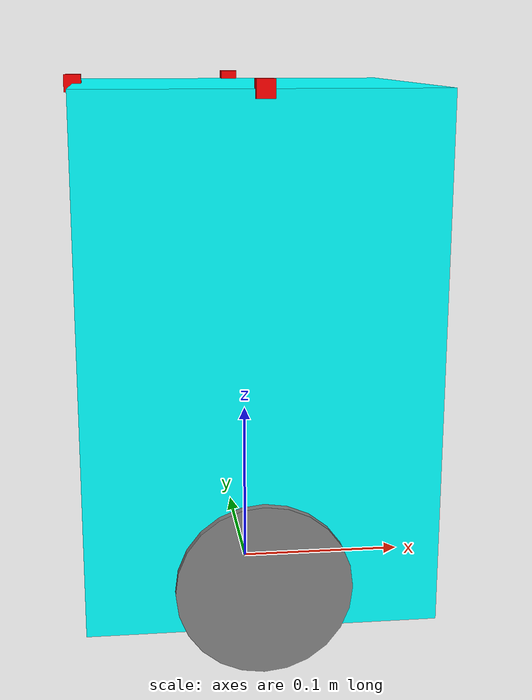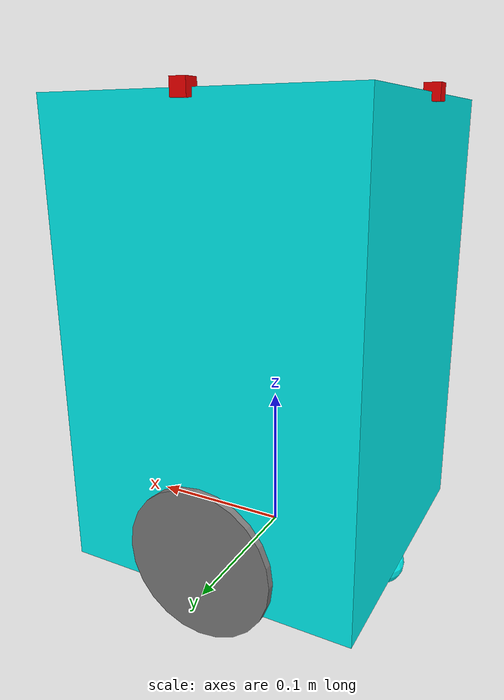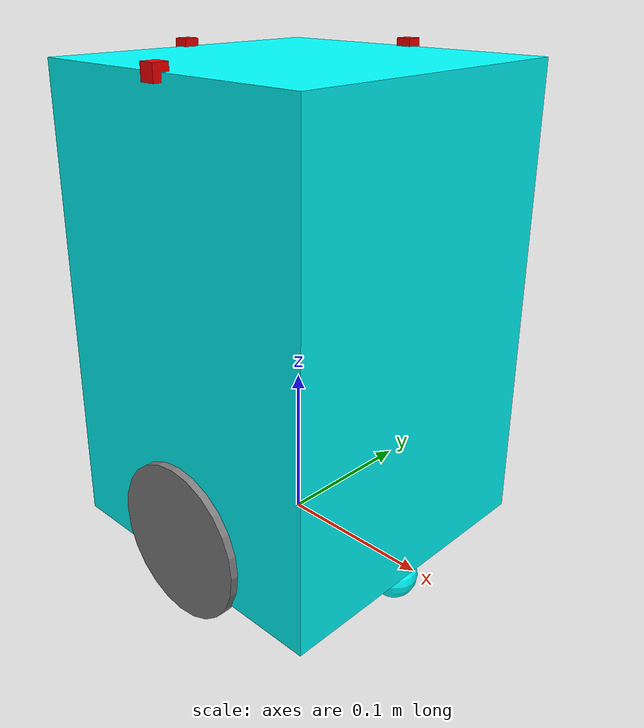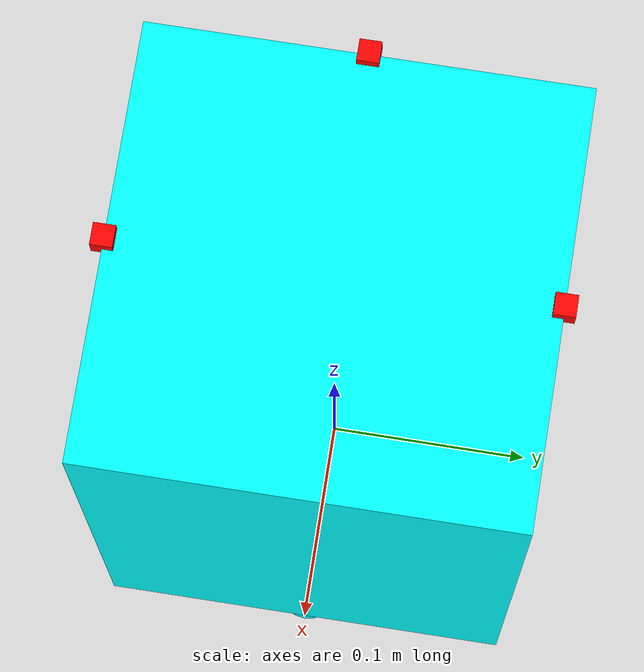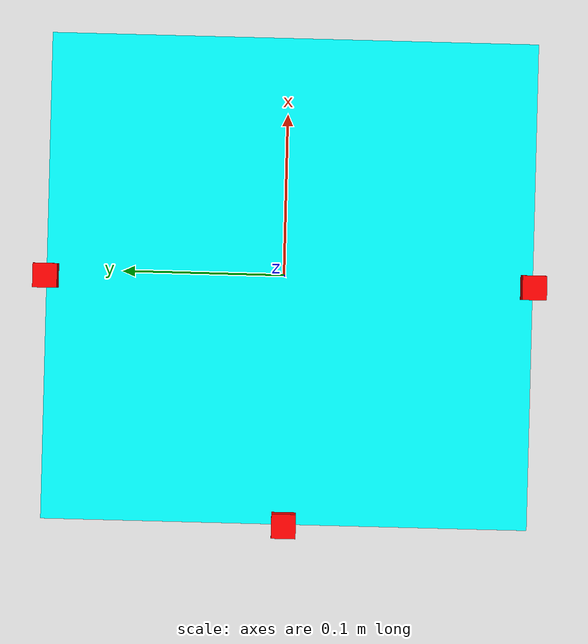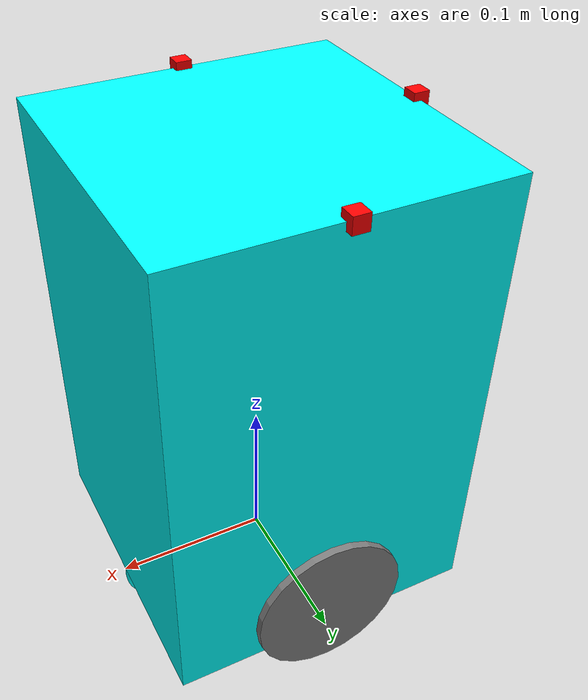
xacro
<?xml version="1.0"?>
<robot name="alphabot2" xmlns:xacro="http://ros.org/wiki/xacro">
    <!-- define robot constants -->
    <xacro:property name="base_width" value="0.2"/>
    <xacro:property name="base_height" value="0.2"/>
    <xacro:property name="base_depth" value="0.3"/>

    <xacro:property name="wheel_radius" value="0.05"/>
    <xacro:property name="wheel_width" value="0.01"/>
    <xacro:property name="wheel_zoff" value="0.125"/>

    <xacro:property name="caster_radius" value="0.015"/>
    <xacro:property name="caster_xoff" value="${(base_width/2)-caster_radius}"/>

    <xacro:property name="camera_size" value="0.01"/>
    <xacro:property name="camera_zoff" value="${base_depth/2}"/>

    <!-- define intertial property macros -->
    <xacro:macro name="box_inertia" params="m w h d">
        <inertial>
            <origin xyz="0 0 0" rpy="0 0 0"/>
            <mass value="${m}"/>
            <inertia ixx="${(m/12) * (h*h + d*d)}" ixy="0.0" ixz="0.0" iyy="${(m/12) * (w*w + d*d)}" iyz="0.0" izz="${(m/12) * (w*w + h*h)}"/>
        </inertial>
    </xacro:macro>

    <xacro:macro name="cylinder_inertia" params="m r h">
        <inertial>
            <origin xyz="0 0 0" rpy="${pi/2} 0 0"/>
            <mass value="${m}"/>
            <inertia ixx="${(m/12) * (3*r*r + h*h)}" ixy = "0" ixz = "0" iyy="${(m/12) * (3*r*r + h*h)}" iyz = "0" izz="${(m/2) * (r*r)}"/>
        </inertial>
    </xacro:macro>

    <xacro:macro name="sphere_inertia" params="m r">
        <inertial>
            <mass value="${m}"/>
            <inertia ixx="${(2/5) * m * (r*r)}" ixy="0.0" ixz="0.0" iyy="${(2/5) * m * (r*r)}" iyz="0.0" izz="${(2/5) * m * (r*r)}"/>
        </inertial>
    </xacro:macro>

    <!--base footprint-->
    <link name="base_footprint">
        <origin xyz="0 0 0"/>
    </link>

    <!-- wheelchair base -->
    <link name="base_link">
        <visual>
            <geometry>
                <box size="${base_width} ${base_height} ${base_depth}"/>
            </geometry>
            <material name="Cyan">
                <color rgba="0 1.0 1.0 1.0"/>
            </material>
        </visual>
        <collision>
            <geometry>
                <box size="${base_width} ${base_height} ${base_depth}"/>
            </geometry>
        </collision>
        <xacro:box_inertia m="10" w="${base_width}" h="${base_height}" d="${base_depth}"/>
    </link>

    <joint name="base_joint" type="fixed">
        <parent link="base_footprint"/>
        <child link="base_link"/>
        <origin xyz="0 0 ${base_depth/2}" rpy="0 0 0"/>
    </joint>

    <!-- drive wheels -->
    <xacro:macro name="drive_wheel" params="prefix y_reflect">
        <link name="${prefix}_link">
            <visual>
                <origin xyz="0 0 0" rpy="${pi/2} 0 0"/>
                <geometry>
                    <cylinder radius="${wheel_radius}" length="${wheel_width}"/>
                </geometry>
                <material name="Gray">
                    <color rgba="0.5 0.5 0.5 1.0"/>
                </material>
            </visual>
            <collision>
                <origin xyz="0 0 0" rpy="${pi/2} 0 0"/>
                <geometry>
                    <cylinder radius="${wheel_radius}" length="${wheel_width}"/>
                </geometry>
            </collision>
            <xacro:cylinder_inertia m="5" r="${wheel_radius}" h="${wheel_width}"/>
        </link>

        <joint name="${prefix}_joint" type="continuous">
            <parent link="base_link"/>
            <child link="${prefix}_link"/>
            <origin xyz="0 ${y_reflect*base_height/2} ${-wheel_zoff}" rpy="0 0 0"/>
            <axis xyz="0 1 0"/>
        </joint>
    </xacro:macro>

    <xacro:drive_wheel prefix="drive_wheel_l" y_reflect="1.0" />
    <xacro:drive_wheel prefix="drive_wheel_r" y_reflect="-1.0"/>

    <!-- caster wheels -->
    <xacro:macro name="caster_wheel" params="prefix x_reflect">
        <link name="${prefix}_link">
            <visual>
                <origin xyz="0 0 0" rpy="0 0 0"/>
                <geometry>
                    <sphere radius="${caster_radius}"/>
                </geometry>
                <material name="Cyan">
                    <color rgba="0 1.0 1.0 1.0"/>
                </material>
            </visual>
            <collision>
                <origin xyz="0 0 0" rpy="0 0 0"/>
                <geometry>
                    <sphere radius="${caster_radius}"/>
                </geometry>
            </collision>

            <xacro:sphere_inertia m="1" r="${caster_radius}"/>
        </link>

        <!-- 0 friction for gazebo (unless it does weird stuff)-->
        <gazebo reference="${prefix}_link">
            <mu1 value="0"/>
            <mu2 value="0"/>
        </gazebo>

        <joint name="${prefix}_joint" type="fixed">
            <parent link="base_link"/>
            <child link="${prefix}_link"/>
            <origin xyz="${x_reflect*caster_xoff} 0 ${caster_radius-wheel_radius-wheel_zoff}" rpy="0 0 0"/>
        </joint>
    </xacro:macro>

    <xacro:caster_wheel prefix="caster_wheel_f" x_reflect="1.0"/>
    <xacro:caster_wheel prefix="caster_wheel_b" x_reflect="-1.0"/>

    <!-- diff drive plugin -->
    <gazebo>
        <plugin name='diff_drive' filename='libgazebo_ros_diff_drive.so'>
            <update_rate>30</update_rate>

            <!-- wheels -->
            <left_joint>drive_wheel_l_joint</left_joint>
            <right_joint>drive_wheel_r_joint</right_joint>

            <!-- kinematics -->
            <wheel_separation>0.2</wheel_separation>
            <wheel_diameter>0.1</wheel_diameter>

            <!-- limits -->
            <max_wheel_torque>100</max_wheel_torque>
            <max_wheel_acceleration>5.0</max_wheel_acceleration>

            <!-- input -->
            <!-- subscribe to the /cmd_vel topic-->
            <command_topic>cmd_vel</command_topic>

            <!-- output -->
            <!-- When true, publish wheel odometry information -->
            <publish_odom>true</publish_odom>

            <!-- When true, publish coordinate transform from odom to base_footprint -->
            <!-- The robot localization package will publish this information -->
            <publish_odom_tf>true</publish_odom_tf>

            <!-- When true, publish coordinate transform from base_link to the wheels -->
            <!-- The robot_state_publisher package is often used to publish this transform -->
            <!-- There will be a warning if both the robot state publisher and the differential drive package publishes the wheel transform (one of them will be ignored) -->
            <publish_wheel_tf>true</publish_wheel_tf>

            <odometry_frame>odom</odometry_frame>
            <robot_base_frame>base_footprint</robot_base_frame>
        </plugin>
    </gazebo>

    <!-- cameras -->
    <xacro:macro name="camera_link" params="prefix x_reflect y_reflect angle_number">
        <link name="camera_${prefix}_link">
            <visual>
                <geometry>
                    <box size="${camera_size} ${camera_size} ${camera_size}"/>
                </geometry>
                <material name="Red">
                    <color rgba="1.0 0.0 0.0 1.0"/>
                </material>
            </visual>
            <collision>
                <geometry>
                    <box size="${camera_size} ${camera_size} ${camera_size}"/>
                </geometry>
            </collision>
            <xacro:box_inertia m="1" w="${camera_size}" h="${camera_size}" d="${camera_size}"/>
        </link>

        <joint name="camera_${prefix}_joint" type="fixed">
            <parent link="base_link"/>
            <child link="camera_${prefix}_link"/>
            <origin xyz="${x_reflect*base_width/2} ${y_reflect*base_height/2} ${camera_zoff}" rpy="0 0 ${angle_number*pi/2}"/>
        </joint>
    </xacro:macro>

    <!-- xacro:camera_link prefix="front" x_reflect="1.0" y_reflect="0.0" angle_number="0"/-->
    <xacro:camera_link prefix="left" x_reflect="0.0" y_reflect="1.0" angle_number="1"/>
    <xacro:camera_link prefix="back" x_reflect="-1.0" y_reflect="0.0" angle_number="2"/>
    <xacro:camera_link prefix="right" x_reflect="0.0" y_reflect="-1.0" angle_number="3"/>

    <gazebo reference="camera_left_link">
        <sensor name="camera_left" type="wideanglecamera">
            <camera>
                <horizontal_fov>3.14159265359</horizontal_fov>
                <image>
                    <width>320</width>
                    <height>320</height>
                    <format>B8G8R8</format>
                </image>
                <clip>
                    <near>0.02</near>
                    <far>100</far>
                </clip>
                <lens>
                    <type>stereographic</type>
                    <scale_to_hfov>true</scale_to_hfov>
                    <cutoff_angle>1.5707</cutoff_angle>
                    <env_texture_size>512</env_texture_size>
                </lens>
            </camera>
            <always_on>1</always_on>
            <update_rate>30</update_rate>
            <plugin filename="libgazebo_ros_camera.so" name="camera_left_plugin">
                <alwaysOn>true</alwaysOn>
                <updateRate>30</updateRate>
                <cameraName>camera_left</cameraName>
                <imageTopicName>camera_left/image_raw</imageTopicName>
                <cameraInfoTopicName>camera_left/camera_info</cameraInfoTopicName>
                <frameName>camera_left_link</frameName>
                <distortionK1>0.0</distortionK1>
                <distortionK2>0.0</distortionK2>
                <distortionK3>0.0</distortionK3>
                <distortionT1>0.0</distortionT1>
                <distortionT2>0.0</distortionT2>
            </plugin>
        </sensor>
    </gazebo>

    <gazebo reference="camera_back_link">
        <sensor name="camera_back" type="wideanglecamera">
            <camera>
                <horizontal_fov>3.14159265359</horizontal_fov>
                <image>
                    <width>320</width>
                    <height>320</height>
                    <format>B8G8R8</format>
                </image>
                <clip>
                    <near>0.02</near>
                    <far>100</far>
                </clip>
                <lens>
                    <type>stereographic</type>
                    <scale_to_hfov>true</scale_to_hfov>
                    <cutoff_angle>1.5707</cutoff_angle>
                    <env_texture_size>512</env_texture_size>
                </lens>
            </camera>
            <always_on>1</always_on>
            <update_rate>30</update_rate>
            <plugin filename="libgazebo_ros_camera.so" name="camera_back_plugin">
                <alwaysOn>true</alwaysOn>
                <updateRate>30</updateRate>
                <cameraName>camera_back</cameraName>
                <imageTopicName>camera_back/image_raw</imageTopicName>
                <cameraInfoTopicName>camera_back/camera_info</cameraInfoTopicName>
                <frameName>camera_back_link</frameName>
                <distortionK1>0.0</distortionK1>
                <distortionK2>0.0</distortionK2>
                <distortionK3>0.0</distortionK3>
                <distortionT1>0.0</distortionT1>
                <distortionT2>0.0</distortionT2>
            </plugin>
        </sensor>
    </gazebo>

    <gazebo reference="camera_right_link">
        <sensor name="camera_right" type="wideanglecamera">
            <camera>
                <horizontal_fov>3.14159265359</horizontal_fov>
                <image>
                    <width>320</width>
                    <height>320</height>
                    <format>B8G8R8</format>
                </image>
                <clip>
                    <near>0.02</near>
                    <far>100</far>
                </clip>
                <lens>
                    <type>stereographic</type>
                    <scale_to_hfov>true</scale_to_hfov>
                    <cutoff_angle>1.5707</cutoff_angle>
                    <env_texture_size>512</env_texture_size>
                </lens >
            </camera>
            <always_on>1</always_on>
            <update_rate>30</update_rate>
            <plugin filename="libgazebo_ros_camera.so" name="camera_right_plugin">
                <alwaysOn>true</alwaysOn>
                <updateRate>30</updateRate>
                <cameraName>camera_right</cameraName>
                <imageTopicName>camera_right/image_raw</imageTopicName>
                <cameraInfoTopicName>camera_right/camera_info</cameraInfoTopicName>
                <frameName>camera_right_link</frameName>
                <distortionK1>0.0</distortionK1>
                <distortionK2>0.0</distortionK2>
                <distortionK3>0.0</distortionK3>
                <distortionT1>0.0</distortionT1>
                <distortionT2>0.0</distortionT2>
            </plugin>
        </sensor>
    </gazebo>
</robot>
